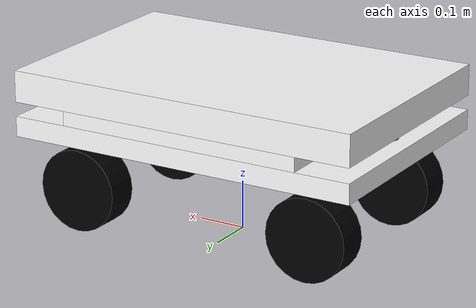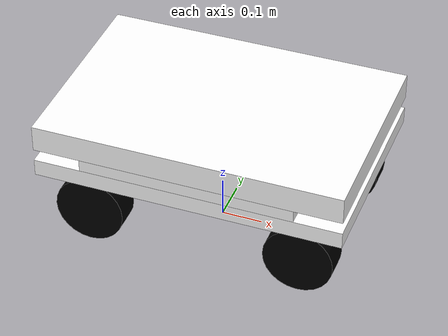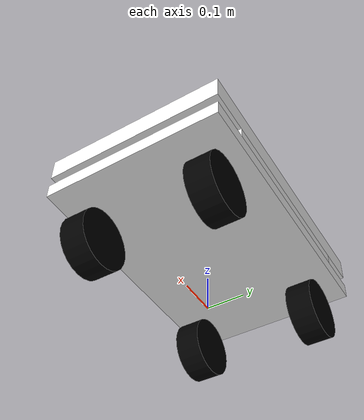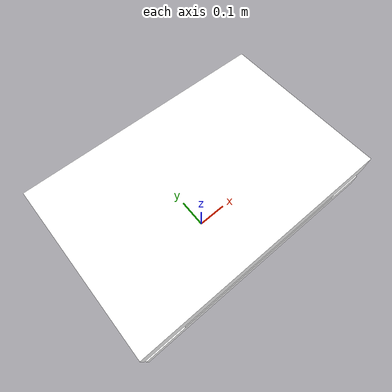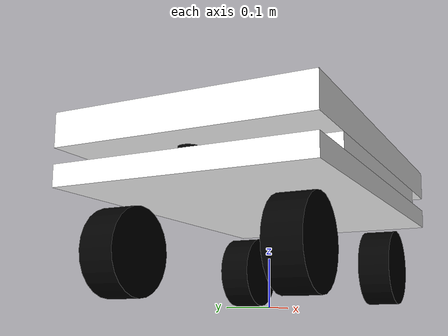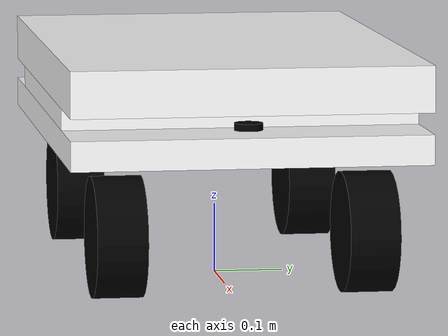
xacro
<?xml version="1.0"?>

<robot name="smartcar"
    xmlns:xi="http://www.w3.org/2001/XInclude"
    xmlns:gazebo="http://playerstage.sourceforge.net/gazebo/xmlschema/#gz"
    xmlns:model="http://playerstage.sourceforge.net/gazebo/xmlschema/#model"
    xmlns:sensor="http://playerstage.sourceforge.net/gazebo/xmlschema/#sensor"
    xmlns:body="http://playerstage.sourceforge.net/gazebo/xmlschema/#body"
    xmlns:geom="http://playerstage.sourceforge.net/gazebo/xmlschema/#geom"
    xmlns:joint="http://playerstage.sourceforge.net/gazebo/xmlschema/#joint"
    xmlns:controller="http://playerstage.sourceforge.net/gazebo/xmlschema/#controller"
    xmlns:interface="http://playerstage.sourceforge.net/gazebo/xmlschema/#interface"
    xmlns:rendering="http://playerstage.sourceforge.net/gazebo/xmlschema/#rendering"
    xmlns:renderable="http://playerstage.sourceforge.net/gazebo/xmlschema/#renderable"
    xmlns:physics="http://playerstage.sourceforge.net/gazebo/xmlschema/#physics"
    xmlns:xacro="http://www.ros.org/wiki/xacro">

  <xacro:include filename="$(find smartcar_description)/urdf/xacro/smartcar_body_base.xacro" />
 <xacro:include filename="$(find smartcar_description)/urdf/xacro/smartcar_base_sim.xacro" />

  <!-- Body of SmartCar, with plates, standoffs and Create (including sim sensors) -->
  <xacro:smartcar_body/>

  <xacro:smartcar_sim/>

</robot>

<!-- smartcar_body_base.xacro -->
<robot name="smartcar" xmlns:xacro="http://www.ros.org/wiki/xacro">
  	<xacro:property name="M_PI" value="3.14159265358"/>

  	<!-- Macro for SmartCar body. Including Gazebo extensions, but does not include Kinect -->
  	<include filename="$(find smartcar_description)/urdf/xacro/smartcar_sim.xacro"/>
	<xacro:include filename="$(find smartcar_description)/urdf/xacro/sensors/lidar.xacro" />
	<xacro:include filename="$(find smartcar_description)/urdf/xacro/sensors/imu.xacro" />
	<xacro:include filename="$(find smartcar_description)/urdf/xacro/rm_description/urdf/RML63/rml_63.xacro" />

  	<xacro:macro name="smartcar_body">

		<xacro:property name="wheel_m" value="2.0"/>
		<xacro:property name="wheel_r" value="0.085"/>
		<xacro:property name="wheel_h" value="0.07"/>

		<xacro:property name="base_link_H" value="0.042"/>
		<xacro:property name="base_middle_link_H" value="0.03"/>
		<xacro:property name="base_top_link_H" value="0.065"/>
		<xacro:property name="slider_link_H" value="1.031"/>

		<!-- Macro for inertia matrix -->
		<xacro:macro name="cube_inertial_matrix" params="m a b c">
			<inertial>
				<mass value="${m}" />
				<inertia ixx="${m*(b*b+c*c)/12}" ixy="0" ixz="0"
					iyy="${m*(a*a+c*c)/12}" iyz="0"
					izz="${m*(a*a+b*b)/12}" />
			</inertial>
		</xacro:macro>

		<xacro:macro name="sphere_inertial_matrix" params="m r">
			<inertial>
				<mass value="${m}" />
				<inertia ixx="${m**r*r*2/5}" ixy="0" ixz="0"
						 iyy="${m**r*r*2/5}" iyz="0"
						 izz="${m**r*r*2/5}" />
			</inertial>
		</xacro:macro>

		<xacro:macro name="cylinder_inertial_matrix" params="m r h">
			<inertial>
				<mass value="${m}" />
				<inertia ixx="${m*(3*r*r+h*h)/12}" ixy = "0" ixz = "0"
					iyy="${m*(3*r*r+h*h)/12}" iyz = "0"
					izz="${m*r*r/2}" />
			</inertial>
		</xacro:macro>

		<link name="base_footprint">
			<visual>
				<origin xyz="0 0 0" rpy="0 0 0" />
				<geometry>
					<box size="0.001 0.001 0.001" />
				</geometry>
			</visual>
		</link>

		<joint name="base_footprint_joint" type="fixed">
			<origin xyz="0 0 ${0.203 + base_link_H/2}" rpy="0 0 0" />
			<parent link="base_footprint"/>
			<child link="base_link" />
		</joint>

		<link name="base_link">
			<inertial>
				<origin xyz="0 0 0"/>
				<mass value="5.0" />
				<inertia ixx="${5*(0.50*0.50+0.042*0.042)/12}" ixy="0.0" ixz="0.0" iyy="${5*(0.75*0.75+0.042*0.042)/12}" iyz="0.0" izz="${5*(0.5*0.5+0.75*0.75)/12}"/>
			</inertial>
			<visual>
				<origin xyz="0 0 0" rpy="0 0 0" />
				<geometry>
					<box size="0.75 0.50 ${base_link_H}"/>
				</geometry>
				<material name="white">
					<color rgba="1 1 1 1"/>
				</material>
			</visual>
			<collision>
				<origin xyz="0 0 0" rpy="0 0 0" />
				<geometry>
					<box size="0.75 0.50 0.042" />
				</geometry>
			</collision>
		</link>

		<joint name="base_middle_joint" type="fixed">
			<origin xyz="0 0 ${(base_link_H + base_middle_link_H) / 2}" rpy="0 0 0" />
			<parent link="base_link"/>
			<child link="base_middle_link" />
		</joint>

		<link name="base_middle_link">
			<xacro:cube_inertial_matrix m="1.0" a="0.52" b="0.50" c="${base_middle_link_H}" />
			<visual>
				<origin xyz="0 0 0" rpy="0 0 0" />
				<geometry>
					<box size="0.52 0.50 ${base_middle_link_H}"/>
				</geometry>
				<material name="white">
					<color rgba="1 1 1 1"/>
				</material>
			</visual>
			<collision>
				<origin xyz="0 0 0" rpy="0 0 0" />
				<geometry>
					<box size="0.52 0.50 ${base_middle_link_H}" />
				</geometry>
			</collision>
		</link>

		<joint name="base_top_joint" type="fixed">
			<origin xyz="0 0 ${(base_top_link_H + base_middle_link_H) / 2}" rpy="0 0 0" />
			<parent link="base_middle_link"/>
			<child link="base_top_link" />
		</joint>

		<link name="base_top_link">
			<xacro:cube_inertial_matrix m="1.0" a="0.75" b="0.50" c="${base_top_link_H}" />
			<visual>
				<origin xyz="0 0 0" rpy="0 0 0" />
				<geometry>
					<box size="0.75 0.50 ${base_top_link_H}"/>
				</geometry>
				<material name="white">
					<color rgba="1 1 1 1"/>
				</material>
			</visual>
			<collision>
				<origin xyz="0 0 0" rpy="0 0 0" />
				<geometry>
					<box size="0.75 0.50 ${base_top_link_H}" />
				</geometry>
			</collision>
		</link>

		<link name="left_front_wheel">
			<xacro:cylinder_inertial_matrix m="${wheel_m}" r="${wheel_r}" h="${wheel_h}"/>
			<visual>
				<origin rpy="0 0 0" xyz="0 0 0"/>
				<geometry>
					<cylinder length="${wheel_h}" radius="${wheel_r}"/>
				</geometry>
				<material name="black">
					<color rgba="0 0 0 1"/>
				</material>
			</visual>
			<collision>
				<origin rpy="0 0 0" xyz="0 0 0"/>
				<geometry>
					<cylinder length="${wheel_h}" radius="${wheel_r}"/>
				</geometry>
			</collision>
		</link>
		<link name="right_front_wheel">
			<xacro:cylinder_inertial_matrix m="${wheel_m}" r="${wheel_r}" h="${wheel_h}"/>
			<visual>
				<origin rpy="0 0 0" xyz="0 0 0"/>
				<geometry>
					<cylinder length="${wheel_h}" radius="${wheel_r}"/>
				</geometry>
				<material name="black">
					<color rgba="0 0 0 1"/>
				</material>
			</visual>
			<collision>
				<origin rpy="0 0 0" xyz="0 0 0"/>
				<geometry>
					<cylinder length="${wheel_h}" radius="${wheel_r}"/>
				</geometry>
			</collision>
		</link>
		<link name="left_back_wheel">
			<xacro:cylinder_inertial_matrix m="${wheel_m}" r="${wheel_r}" h="${wheel_h}"/>
			<visual>
				<origin rpy="0 0 0" xyz="0 0 0"/>
				<geometry>
					<cylinder length="${wheel_h}" radius="${wheel_r}"/>
				</geometry>
				<material name="black">
					<color rgba="0 0 0 1"/>
				</material>
			</visual>
			<collision>
				<origin rpy="0 0 0" xyz="0 0 0"/>
				<geometry>
					<cylinder length="${wheel_h}" radius="${wheel_r}"/>
				</geometry>
			</collision>
		</link>

		<link name="right_back_wheel">
			<xacro:cylinder_inertial_matrix m="${wheel_m}" r="${wheel_r}" h="${wheel_h}"/>
			<visual>
				<origin rpy="0 0 0" xyz="0 0 0"/>
				<geometry>
					<cylinder length="${wheel_h}" radius="${wheel_r}"/>
				</geometry>
				<material name="black">
					<color rgba="0 0 0 1"/>
				</material>
			</visual>
			<collision>
				<origin rpy="0 0 0" xyz="0 0 0"/>
				<geometry>
					<cylinder length="${wheel_h}" radius="${wheel_r}"/>
				</geometry>
			</collision>
		</link>

		<link name="left_bridge">
			<xacro:sphere_inertial_matrix m="1.0" r="0.02"/>
			<visual>
				<origin rpy="0 0 0" xyz="0 0 0"/>
				<geometry>
					<sphere radius="0.02" />
				</geometry>
				<material name="red">
					<color rgba="1 0 0 1"/>
				</material>
			</visual>
		</link>

		<joint name="left_bridge_to_bridge" type="revolute">
			<parent link="base_link"/>
			<child link="left_bridge"/>
			<origin rpy="0 0 ${M_PI/2}" xyz="0.26 0.175 -0.128"/>
			<axis xyz="0 0 1" />
			<dynamics damping="0.1"/>
			<limit effort="200" velocity="20" lower="-1.5707" upper="1.5707" />
			<joint_properties damping="20.0" friction="20.0"/>
		</joint>

		<link name="right_bridge">
			<xacro:sphere_inertial_matrix m="1.0" r="0.02"/>
			<visual>
				<origin rpy="0 0 0" xyz="0 0 0"/>
				<geometry>
					<sphere radius="0.02" />
				</geometry>
				<material name="red">
					<color rgba="1 0 0 1"/>
				</material>
			</visual>
		</link>

		<joint name="right_bridge_to_bridge" type="revolute">
			<parent link="base_link"/>
			<child link="right_bridge"/>
			<origin rpy="0 0 ${M_PI/2}" xyz="0.26 -0.175 -0.128"/>
			<axis xyz="0 0 1" />
			<dynamics damping="0.1"/>
			<limit effort="200" velocity="20" lower="-1.5707" upper="1.5707" />
			<joint_properties damping="20.0" friction="20.0"/>
		</joint>

		<joint name="right_front_wheel_joint" type="continuous">
			<axis xyz="0 0 1"/>
			<parent link="right_bridge"/>
			<child link="right_front_wheel"/>
			<origin rpy="0 ${M_PI/2} 0" xyz="0 0 0"/>
			<dynamics damping="0.0"/>
			<limit effort="100" velocity="100"/>
			<joint_properties damping="20.0" friction="20.0"/>
		</joint>

		<joint name="left_front_wheel_joint" type="continuous">
			<axis xyz="0 0 1"/>
			<parent link="left_bridge"/>
			<child link="left_front_wheel"/>
			<origin rpy="0 ${M_PI/2} 0" xyz="0 -0 0"/>
			<dynamics damping="0.0"/>
			<limit effort="100" velocity="100"/>
			<joint_properties damping="20.0" friction="20.0"/>
		</joint>

		<joint name="right_back_wheel_joint" type="continuous">
			<axis xyz="0 0 1"/>
			<parent link="right_back_bridge"/>
			<child link="right_back_wheel"/>
			<origin rpy="0 ${M_PI/2} 0" xyz="0 0 0"/>
			<dynamics damping="0.0"/>
			<limit effort="100" velocity="100"/>
			<joint_properties damping="20.0" friction="20.0"/>
		</joint>

		<joint name="left_back_wheel_joint" type="continuous">
			<axis xyz="0 0 1"/>
			<parent link="left_back_bridge"/>
			<child link="left_back_wheel"/>
			<origin rpy="0 ${M_PI/2} 0" xyz="0 -0 0"/>
			<dynamics damping="0.0"/>
			<limit effort="100" velocity="100"/>
			<joint_properties damping="10.0" friction="10.0"/>
		</joint>

		<link name="right_back_bridge">
			<xacro:sphere_inertial_matrix m="1.0" r="0.02"/>
			<visual>
				<origin rpy="0 0 0" xyz="0 0 0"/>
				<geometry>
					<sphere radius="0.02" />
				</geometry>
				<material name="red">
					<color rgba="1 0 0 1"/>
				</material>
			</visual>
		</link>

		<joint name="right_back_bridge_to_bridge" type="revolute">
			<parent link="base_link"/>
			<child link="right_back_bridge"/>
			<origin rpy="0 0 ${M_PI/2}" xyz="-0.26 -0.175 -0.128"/>
			<axis xyz="0 0 1" />
			<dynamics damping="0.1"/>
			<limit effort="200" velocity="20" lower="-1.5707" upper="1.5707" />
			<joint_properties damping="10.0" friction="10.0"/>
		</joint>

		<link name="left_back_bridge">
			<xacro:sphere_inertial_matrix m="1.0" r="0.02"/>
			<visual>
				<origin rpy="0 0 0" xyz="0 0 0"/>
				<geometry>
					<sphere radius="0.02" />
				</geometry>
				<material name="red">
					<color rgba="1 0 0 1"/>
				</material>
			</visual>
		</link>

		<joint name="left_back_bridge_to_bridge" type="revolute">
			<parent link="base_link"/>
			<child link="left_back_bridge"/>
			<origin rpy="0 0 ${M_PI/2}" xyz="-0.26 0.175 -0.128"/>
			<axis xyz="0 0 1" />
			<dynamics damping="0.1"/>
			<limit effort="200" velocity="20" lower="-1.5707" upper="1.5707" />
			<joint_properties damping="10.0" friction="10.0"/>
		</joint>

	<!--	Sensors-->
		<xacro:lidar prefix="laser_front"/>

		<joint name="lidar_front_joint" type="fixed">
			<origin xyz="0.326 0 0.031" rpy="0 0 0" />
			<parent link="base_link"/>
			<child link="laser_front_link"/>
		</joint>

		<xacro:lidar prefix="laser_back"/>

		<joint name="lidar_back_joint" type="fixed">
			<origin xyz="-0.326 0 0.031" rpy="0 0 ${M_PI}" />
			<parent link="base_link"/>
			<child link="laser_back_link"/>
		</joint>

		<xacro:imu prefix="imu"/>

		<joint name="imu_joint" type="fixed">
			<origin xyz="0.0 0 0" rpy="0 0 0" />
			<parent link="base_link"/>
			<child link="imu_link"/>
		</joint>

	</xacro:macro>
</robot>

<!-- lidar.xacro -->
<robot xmlns:xacro="http://www.ros.org/wiki/xacro" name="lidar">

    <xacro:macro name="lidar" params="prefix:=laser">
        <!-- Create laser reference frame -->
        <link name="${prefix}_link">
            <inertial>
                <mass value="0.1" />
                <origin xyz="0 0 0" />
                <inertia ixx="0.001" ixy="0.0" ixz="0.0"
                         iyy="0.001" iyz="0.0"
                         izz="0.001" />
            </inertial>

            <visual>
                <origin xyz=" 0 0 0 " rpy="0 0 0" />
                <geometry>
                    <cylinder length="0.01" radius="0.02"/>
                </geometry>
                <material name="black"/>
            </visual>

            <collision>
                <origin xyz="0.0 0.0 0.0" rpy="0 0 0" />
                <geometry>
                    <cylinder length="0.01" radius="0.02"/>
                </geometry>
            </collision>
        </link>
        <gazebo reference="${prefix}_link">
            <material>Gazebo/Black</material>
        </gazebo>

        <gazebo reference="${prefix}_link">
            <sensor type="ray" name="${prefix}">
                <pose>0 0 0 0 0 0</pose>
                <visualize>false</visualize>
                <update_rate>10.0</update_rate>
                <ray>
                    <scan>
                        <horizontal>
                            <samples>360</samples>
                            <resolution>1</resolution>
                            <min_angle>-1.5707963</min_angle>
                            <max_angle>1.5707963</max_angle>
                        </horizontal>
                    </scan>
                    <range>
                        <min>0.1</min>
                        <max>50.0</max>
                        <resolution>0.01</resolution>
                    </range>
                    <noise>
                        <type>gaussian</type>
                        <mean>0.0</mean>
                        <stddev>0.01</stddev>
                    </noise>
                </ray>
                <plugin name="gazebo_rplidar" filename="libgazebo_ros_laser.so">
                    <topicName>/scan_${prefix}</topicName>
                    <frameName>${prefix}_link</frameName>
                </plugin>
            </sensor>
        </gazebo>

    </xacro:macro>
</robot>

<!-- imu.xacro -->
<robot xmlns:xacro="http://www.ros.org/wiki/xacro" name="imu">

    <xacro:macro name="imu" params="prefix:=imu">
        <!-- Create laser reference frame -->
        <link name="${prefix}_link">
            <inertial>
                <mass value="0.001" />
                <origin xyz="0 0 0" />
                <inertia ixx="0.001" ixy="0.0" ixz="0.0"
                         iyy="0.001" iyz="0.0"
                         izz="0.001" />
            </inertial>

            <visual>
                <origin xyz=" 0 0 0 " rpy="0 0 0" />
                <geometry>
                    <box size="0.02 0.01 0.01" />
                </geometry>
                <material name="black"/>
            </visual>

        </link>
        <gazebo reference="${prefix}_link">
            <material>Gazebo/Black</material>
        </gazebo>

        <gazebo reference="${prefix}_link">
            <gravity>true</gravity>
            <sensor name="imu_sensor" type="imu">
                <always_on>true</always_on>
                <update_rate>100</update_rate>
                <visualize>true</visualize>
                <topic>/imu_data</topic>
                <plugin filename="libgazebo_ros_imu_sensor.so" name="imu_plugin">
                    <topicName>/imu_data</topicName>
                    <bodyName>imu_link</bodyName>
                    <updateRateHZ>100.0</updateRateHZ>
                    <gaussianNoise>0.0</gaussianNoise>
                    <xyzOffset>0 0 0</xyzOffset>
                    <rpyOffset>0 0 0</rpyOffset>
                    <frameName>imu_link</frameName>
                </plugin>
                <pose>0 0 0 0 0 0</pose>
            </sensor>
        </gazebo>

    </xacro:macro>
</robot>

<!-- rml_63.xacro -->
<robot xmlns:xacro="http://www.ros.org/wiki/xacro" name="rml_63">
  <xacro:property name="M_PI" value="3.14159265358"/>

  <!-- Transmissions for ROS Control -->
  <xacro:macro name="transmission_block" params="joint_name">
    <transmission name="tran_${joint_name}">
      <type>transmission_interface/SimpleTransmission</type>
      <joint name="${joint_name}">
        <hardwareInterface>hardware_interface/PositionJointInterface</hardwareInterface>
      </joint>
      <actuator name="motor_${joint_name}">
        <hardwareInterface>hardware_interface/PositionJointInterface</hardwareInterface>
        <mechanicalReduction>1</mechanicalReduction>
      </actuator>
    </transmission>
  </xacro:macro>

  <xacro:macro name="rml_63" params="prefix:=left">
    <link
      name="rml_link_${prefix}">
      <inertial>
        <origin
          xyz="0.0014231 -0.00010178 0.050147"
          rpy="0 0 0" />
        <mass
          value="0.66171" />
        <inertia
          ixx="0.00099443"
          ixy="3.282E-06"
          ixz="-9.9964E-06"
          iyy="0.0010144"
          iyz="1.2811E-06"
          izz="0.00067929" />
      </inertial>
      <visual>
        <origin
          xyz="0 0 0"
          rpy="0 0 0" />
        <geometry>
          <mesh filename="package://smartcar_description/urdf/xacro/rm_description/meshes/RML63/base_link.STL" />
        </geometry>
        <material
          name="">
          <color
            rgba="1 1 1 1" />
        </material>
      </visual>
      <collision>
        <origin
          xyz="0 0 0"
          rpy="0 0 0" />
        <geometry>
          <mesh filename="package://smartcar_description/urdf/xacro/rm_description/meshes/RML63/base_link.STL" />
        </geometry>
      </collision>
    </link>
    <link
      name="link1_${prefix}">
      <inertial>
        <origin
          xyz="-0.043281 -0.0072256 -0.012694"
          rpy="0 0 0" />
        <mass
          value="0.89496" />
        <inertia
          ixx="0.0010156"
          ixy="-0.00026764"
          ixz="0.00045014"
          iyy="0.0024107"
          iyz="6.0996E-05"
          izz="0.0022755" />
      </inertial>
      <visual>
        <origin
          xyz="0 0 0"
          rpy="0 0 0" />
        <geometry>
          <mesh filename="package://smartcar_description/urdf/xacro/rm_description/meshes/RML63/link1.STL" />
        </geometry>
        <material
          name="">
          <color
            rgba="1 1 1 1" />
        </material>
      </visual>
      <collision>
        <origin
          xyz="0 0 0"
          rpy="0 0 0" />
        <geometry>
          <mesh filename="package://smartcar_description/urdf/xacro/rm_description/meshes/RML63/link1.STL" />
        </geometry>
      </collision>
    </link>
    <joint
      name="joint1_${prefix}"
      type="revolute">
      <origin
        xyz="0 0 0.172"
        rpy="0 0 0" />
      <parent
        link="rml_link_${prefix}" />
      <child
        link="link1_${prefix}" />
      <axis
        xyz="0 0 1" />
      <limit
        lower="-3.106"
        upper="3.106"
        effort="100"
        velocity="1" />
    </joint>
    <link
      name="link2_${prefix}">
      <inertial>
        <origin
          xyz="0.17388 3.639E-07 -0.089966"
          rpy="0 0 0" />
        <mass
          value="1.5679" />
        <inertia
          ixx="0.0010615"
          ixy="-7.3371E-08"
          ixz="-0.00025488"
          iyy="0.03035"
          iyz="-1.6148E-08"
          izz="0.030485" />
      </inertial>
      <visual>
        <origin
          xyz="0 0 0"
          rpy="0 0 0" />
        <geometry>
          <mesh filename="package://smartcar_description/urdf/xacro/rm_description/meshes/RML63/link2.STL" />
        </geometry>
        <material
          name="">
          <color
            rgba="1 1 1 1" />
        </material>
      </visual>
      <collision>
        <origin
          xyz="0 0 0"
          rpy="0 0 0" />
        <geometry>
          <mesh filename="package://smartcar_description/urdf/xacro/rm_description/meshes/RML63/link2.STL" />
        </geometry>
      </collision>
    </link>
    <joint
      name="joint2_${prefix}"
      type="revolute">
      <origin
        xyz="-0.086 0 0"
        rpy="0 -1.5708 -1.5708" />
      <parent
        link="link1_${prefix}" />
      <child
        link="link2_${prefix}" />
      <axis
        xyz="0 0 1" />
      <limit
        lower="-3.106"
        upper="3.106"
        effort="100"
        velocity="1" />
    </joint>
    <link
      name="link3_${prefix}">
      <inertial>
        <origin
          xyz="0.035968 -0.020568 -0.0048526"
          rpy="0 0 0" />
        <mass
          value="0.67539" />
        <inertia
          ixx="0.00091144"
          ixy="0.00043238"
          ixz="-0.0001205"
          iyy="0.0012128"
          iyz="6.6376E-05"
          izz="0.0015231" />
      </inertial>
      <visual>
        <origin
          xyz="0 0 0"
          rpy="0 0 0" />
        <geometry>
          <mesh filename="package://smartcar_description/urdf/xacro/rm_description/meshes/RML63/link3.STL" />
        </geometry>
        <material
          name="">
          <color
            rgba="1 1 1 1" />
        </material>
      </visual>
      <collision>
        <origin
          xyz="0 0 0"
          rpy="0 0 0" />
        <geometry>
          <mesh filename="package://smartcar_description/urdf/xacro/rm_description/meshes/RML63/link3.STL" />
        </geometry>
      </collision>
    </link>
    <joint
      name="joint3_${prefix}"
      type="revolute">
      <origin
        xyz="0.38 0 -0.00030011"
        rpy="0 0 1.5708" />
      <parent
        link="link2_${prefix}" />
      <child
        link="link3_${prefix}" />
      <axis
        xyz="0 0 1" />
      <limit
        lower="-3.106"
        upper="2.53"
        effort="100"
        velocity="1" />
    </joint>
    <link
      name="link4_${prefix}">
      <inertial>
        <origin
          xyz="-2.0098E-06 -0.033559 -0.18296"
          rpy="0 0 0" />
        <mass
          value="0.69687" />
        <inertia
          ixx="0.0085449"
          ixy="4.7796E-08"
          ixz="-1.0943E-08"
          iyy="0.0080043"
          iyz="0.0020032"
          izz="0.00084216" />
      </inertial>
      <visual>
        <origin
          xyz="0 0 0"
          rpy="0 0 0" />
        <geometry>
          <mesh filename="package://smartcar_description/urdf/xacro/rm_description/meshes/RML63/link4.STL" />
        </geometry>
        <material
          name="">
          <color
            rgba="1 1 1 1" />
        </material>
      </visual>
      <collision>
        <origin
          xyz="0 0 0"
          rpy="0 0 0" />
        <geometry>
          <mesh filename="package://smartcar_description/urdf/xacro/rm_description/meshes/RML63/link4.STL" />
        </geometry>
      </collision>
    </link>
    <joint
      name="joint4_${prefix}"
      type="revolute">
      <origin
        xyz="0.069 -0.405 0.00029958"
        rpy="1.5708 0 0" />
      <parent
        link="link3_${prefix}" />
      <child
        link="link4_${prefix}" />
      <axis
        xyz="0 0 1" />
      <limit
        lower="-3.106"
        upper="3.106"
        effort="100"
        velocity="1" />
    </joint>
    <link
      name="link5_${prefix}">
      <inertial>
        <origin
          xyz="-1.5679E-07 0.02862 -0.0062118"
          rpy="0 0 0" />
        <mass
          value="0.34759" />
        <inertia
          ixx="0.00049457"
          ixy="-1.0235E-08"
          ixz="-1.8949E-09"
          iyy="0.00019706"
          iyz="-6.3439E-05"
          izz="0.00044565" />
      </inertial>
      <visual>
        <origin
          xyz="0 0 0"
          rpy="0 0 0" />
        <geometry>
          <mesh filename="package://smartcar_description/urdf/xacro//rm_description/meshes/RML63/link5.STL" />
        </geometry>
        <material
          name="">
          <color
            rgba="1 1 1 1" />
        </material>
      </visual>
      <collision>
        <origin
          xyz="0 0 0"
          rpy="0 0 0" />
        <geometry>
          <mesh filename="package://smartcar_description/urdf/xacro//rm_description/meshes/RML63/link5.STL" />
        </geometry>
      </collision>
    </link>
    <joint
      name="joint5_${prefix}"
      type="revolute">
      <origin
        xyz="0 0 0"
        rpy="1.5708 0 3.1416" />
      <parent
        link="link4_${prefix}" />
      <child
        link="link5_${prefix}" />
      <axis
        xyz="0 0 1" />
      <limit
        lower="-3.106"
        upper="3.106"
        effort="100"
        velocity="1" />
    </joint>
    <link
      name="link6_${prefix}">
      <inertial>
        <origin
          xyz="-0.0006163 0.00034085 -0.01449"
          rpy="0 0 0" />
        <mass
          value="0.077104" />
        <inertia
          ixx="2.2947E-05"
          ixy="-1.3061E-06"
          ixz="1.1202E-07"
          iyy="2.1475E-05"
          iyz="-5.1151E-08"
          izz="3.4243E-05" />
      </inertial>
      <visual>
        <origin
          xyz="0 0 0"
          rpy="0 0 0" />
        <geometry>
          <mesh filename="package://smartcar_description/urdf/xacro//rm_description/meshes/RML63/link6.STL" />
        </geometry>
        <material
          name="">
          <color
            rgba="1 1 1 1" />
        </material>
      </visual>
      <collision>
        <origin
          xyz="0 0 0"
          rpy="0 0 0" />
        <geometry>
          <mesh filename="package://smartcar_description/urdf/xacro//rm_description/meshes/RML63/link6.STL" />
        </geometry>
      </collision>
    </link>
    <joint
      name="joint6_${prefix}"
      type="revolute">
      <origin
        xyz="0 0.115 0"
        rpy="1.5708 0 3.1416" />
      <parent
        link="link5_${prefix}" />
      <child
        link="link6_${prefix}" />
      <axis
        xyz="0 0 1" />
      <limit
        lower="-6.28"
        upper="6.28"
        effort="100"
        velocity="1" />
    </joint>

    <xacro:transmission_block joint_name="joint1_${prefix}"/>
    <xacro:transmission_block joint_name="joint2_${prefix}"/>
    <xacro:transmission_block joint_name="joint3_${prefix}"/>
    <xacro:transmission_block joint_name="joint4_${prefix}"/>
    <xacro:transmission_block joint_name="joint5_${prefix}"/>
    <xacro:transmission_block joint_name="joint6_${prefix}"/>

  </xacro:macro>
</robot>
